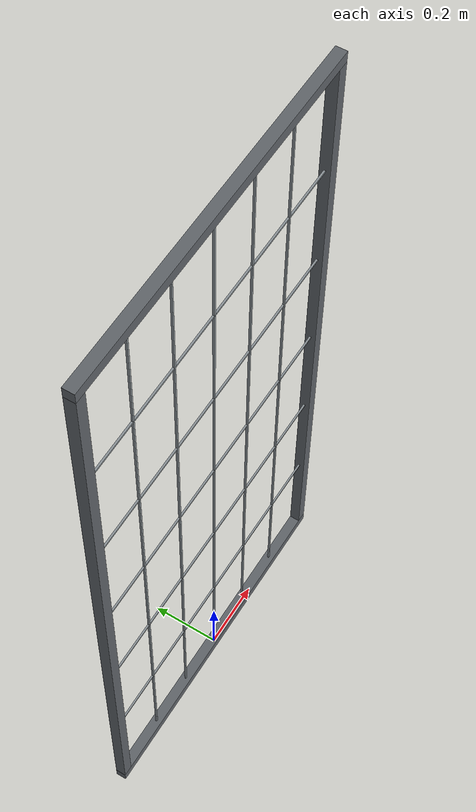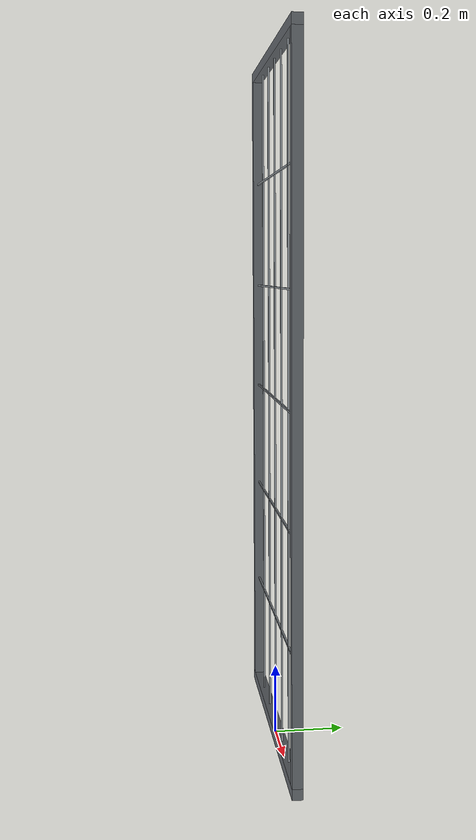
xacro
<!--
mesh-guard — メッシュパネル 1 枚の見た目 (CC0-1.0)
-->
<?xml version="1.0"?>
<robot xmlns:xacro="http://www.ros.org/wiki/xacro" name="mesh-guard-panel">
  <xacro:arg name="width" default="1.0"/>
  <xacro:arg name="height" default="2.0"/>
  <xacro:arg name="thickness" default="0.03"/>
  <xacro:arg name="frame" default="0.03"/>
  <xacro:arg name="wire" default="0.005"/>
  <xacro:arg name="aperture" default="0.049"/>
  <xacro:arg name="handle" default="0"/>

  <xacro:property name="w" value="$(arg width)"/>
  <xacro:property name="h" value="$(arg height)"/>
  <xacro:property name="t" value="$(arg thickness)"/>
  <xacro:property name="f" value="$(arg frame)"/>
  <xacro:property name="wire" value="$(arg wire)"/>
  <xacro:property name="ap" value="$(arg aperture)"/>

  <!-- 枠の内側 = 金網が張られる範囲 -->
  <xacro:property name="iw" value="${w - 2*f}"/>
  <xacro:property name="ih" value="${h - 2*f}"/>
  <!-- 描く本数: 開口どおりだと多すぎるので 1 辺 5 本で頭打ちにする -->
  <xacro:property name="nv" value="${max(1, min(5, int(iw / max(ap, iw / 6))))}"/>
  <xacro:property name="nh" value="${max(1, min(5, int(ih / max(ap, ih / 6))))}"/>

  <material name="galv"><color rgba="0.55 0.58 0.60 1"/></material>
  <material name="frame"><color rgba="0.38 0.40 0.42 1"/></material>

  <!-- root: 床レベル・パネル中心。geometry を持たないのでフレームになる -->
  <link name="panel"/>

  <xacro:macro name="bar" params="name size xyz mat">
    <link name="${name}">
      <visual>
        <origin xyz="${xyz}"/>
        <geometry><box size="${size}"/></geometry>
        <material name="${mat}"/>
      </visual>
    </link>
    <joint name="j_${name}" type="fixed">
      <parent link="panel"/><child link="${name}"/>
    </joint>
  </xacro:macro>

  <!-- 枠 (角パイプ) -->
  <xacro:bar name="frame_t" size="${w} ${t} ${f}" xyz="0 0 ${h - f/2}" mat="frame"/>
  <xacro:bar name="frame_b" size="${w} ${t} ${f}" xyz="0 0 ${f/2}" mat="frame"/>
  <xacro:bar name="frame_l" size="${f} ${t} ${ih}" xyz="${-w/2 + f/2} 0 ${h/2}" mat="frame"/>
  <xacro:bar name="frame_r" size="${f} ${t} ${ih}" xyz="${w/2 - f/2} 0 ${h/2}" mat="frame"/>

  <!-- 金網 (xacro にループは無いので再帰マクロ) -->
  <xacro:macro name="wires_v" params="i n">
    <xacro:if value="${i &lt;= n}">
      <xacro:bar name="wire_v${i}" size="${wire} ${wire} ${ih}"
                 xyz="${-iw/2 + iw*i/(n+1)} 0 ${h/2}" mat="galv"/>
      <xacro:wires_v i="${i+1}" n="${n}"/>
    </xacro:if>
  </xacro:macro>
  <xacro:macro name="wires_h" params="i n">
    <xacro:if value="${i &lt;= n}">
      <xacro:bar name="wire_h${i}" size="${iw} ${wire} ${wire}"
                 xyz="0 0 ${f + ih*i/(n+1)}" mat="galv"/>
      <xacro:wires_h i="${i+1}" n="${n}"/>
    </xacro:if>
  </xacro:macro>
  <xacro:wires_v i="1" n="${nv}"/>
  <xacro:wires_h i="1" n="${nh}"/>

  <!-- 扉のときだけハンドル -->
  <xacro:if value="${$(arg handle) &gt; 0}">
    <xacro:bar name="handle" size="${3*f} ${2*t} ${f/2}"
               xyz="${w/2 - 2*f} 0 ${h/2}" mat="frame"/>
  </xacro:if>
</robot>
